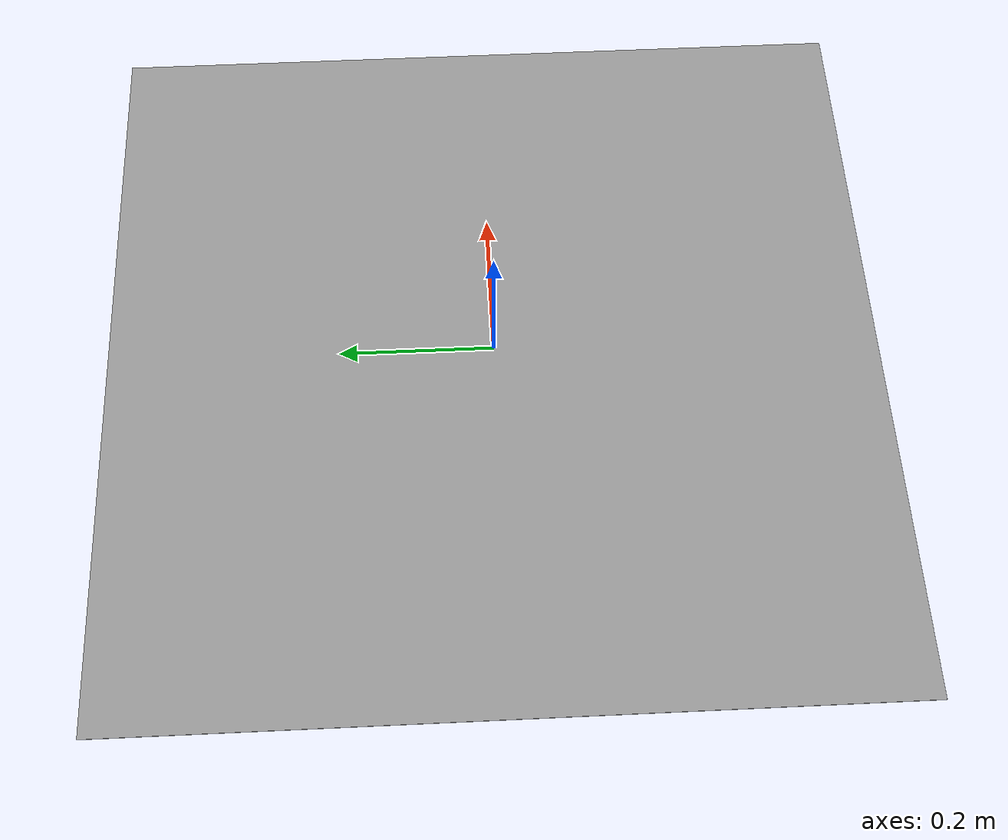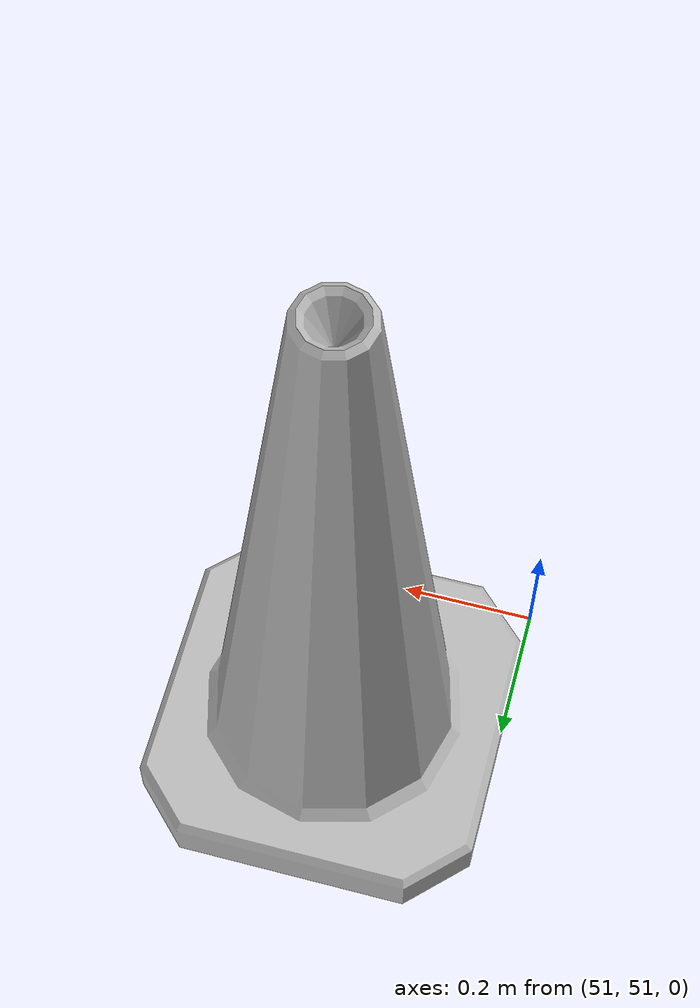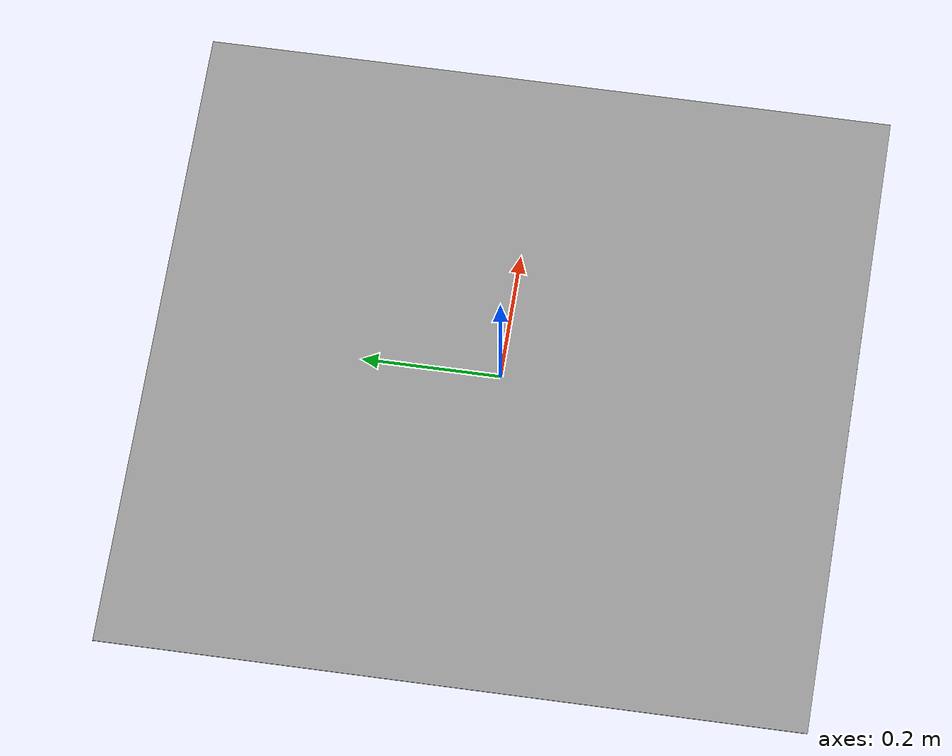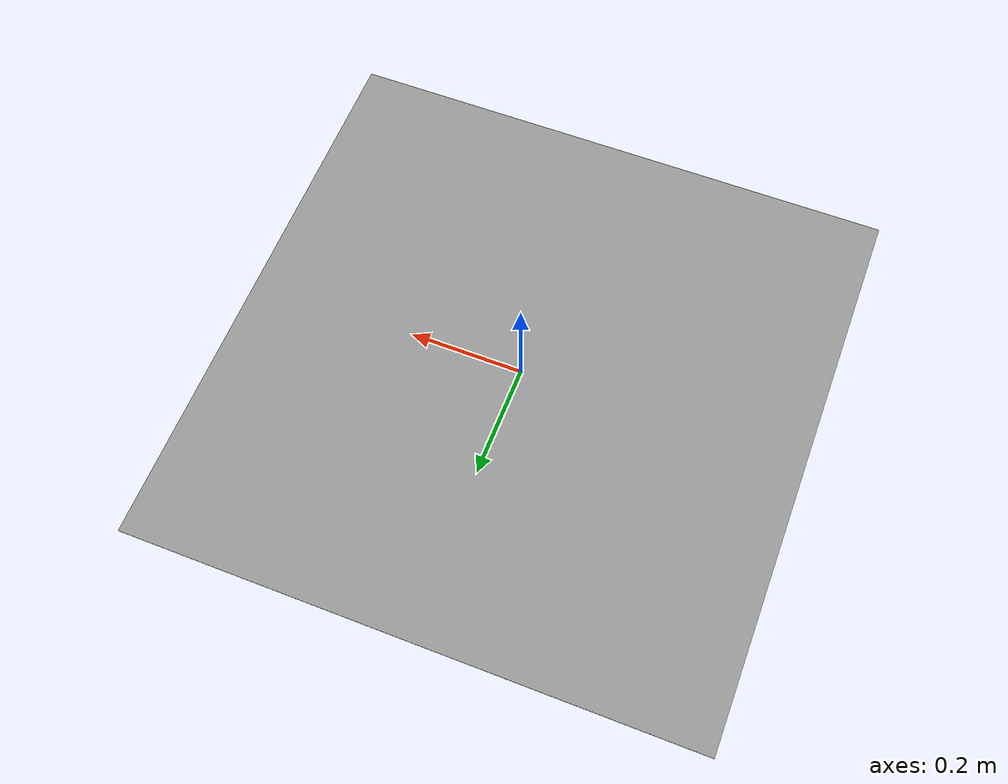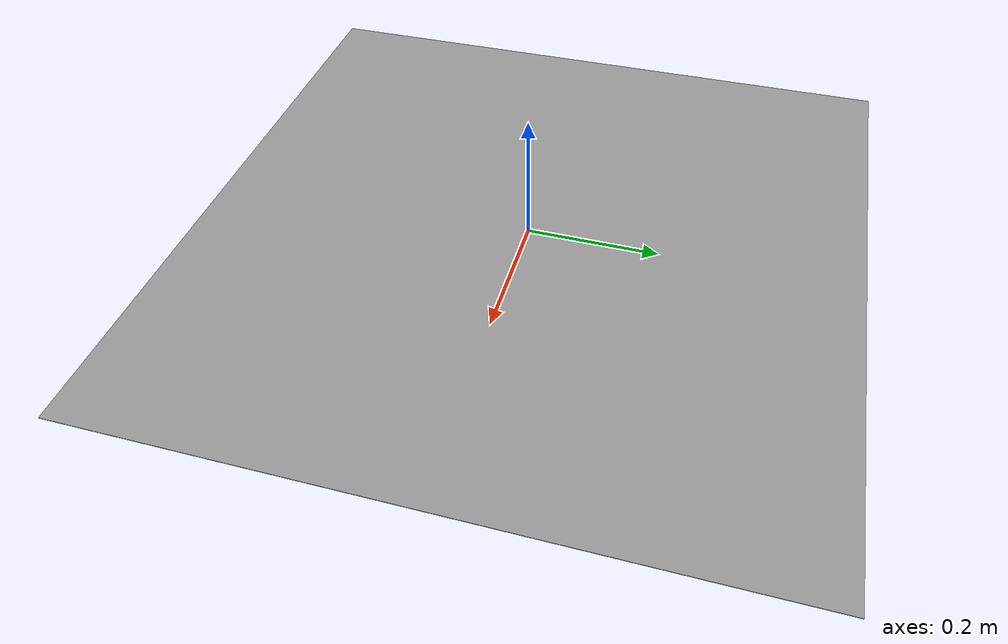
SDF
<?xml version="1.0"?>
<sdf version="1.4">
	<world name="default">
		<physics type="ode">
			<real_time_update_rate>2000.000000</real_time_update_rate>
			<max_step_size>0.0005</max_step_size>
		</physics>
		<include>
			<uri>model://sun</uri>
		</include>
		<include>
			<uri>model://construction_cone</uri>
			<name>construction_cone_1</name>
			<pose>51.25 51.25 0 0 0 0</pose>
		</include>

		<model name="gplane">
			<link name="plane">
				<collision name="collision">
					<geometry>

						<plane>
							<normal>0.000000 0.000000 1.000000</normal>
						</plane>
					</geometry>
					<surface>
						<friction>
							<ode>
								<mu>0.5</mu>
								<mu2>0.5</mu2>
							</ode>
						</friction>
						<bounce>
							<restitution_coefficient>0.000000</restitution_coefficient>
							<threshold>100000.000000</threshold>
						</bounce>
						<contact>
							<ode>
								<kp>800000.000000</kp>
								<kd>0.020000</kd>
							</ode>
						</contact>
					</surface>
					<laser_retro>0.000000</laser_retro>
				</collision>
				<visual name="visual">
					<geometry>
						<plane>
							<normal>0.000000 0.000000 1.000000</normal>
						</plane>

					</geometry>
					<material>
						<script>
							<uri>file://media/materials/scripts/gazebo.material</uri>
							<name>Gazebo/Grey</name>
						</script>
					</material>
				</visual>
				<gravity>1</gravity>
				<self_collide>0</self_collide>
				<kinematic>0</kinematic>
			</link>
			<static>1</static>
		</model>
	</world>
</sdf>

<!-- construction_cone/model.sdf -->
<sdf version="1.5">
  <model name="Construction Cone">
    <link name="link">
      <collision name="collision">
        <geometry>
          <mesh>
            <scale>10 10 10</scale>
            <uri>file://isr-testbed/construction_cone/meshes/construction_cone.dae</uri>
          </mesh>
        </geometry>
      </collision>
      <visual name="visual">
        <geometry>
          <mesh>
            <scale>10 10 10</scale>
            <uri>file://isr-testbed/construction_cone/meshes/construction_cone.dae</uri>
          </mesh>
        </geometry>
      </visual>
    </link>
  </model>
</sdf>
